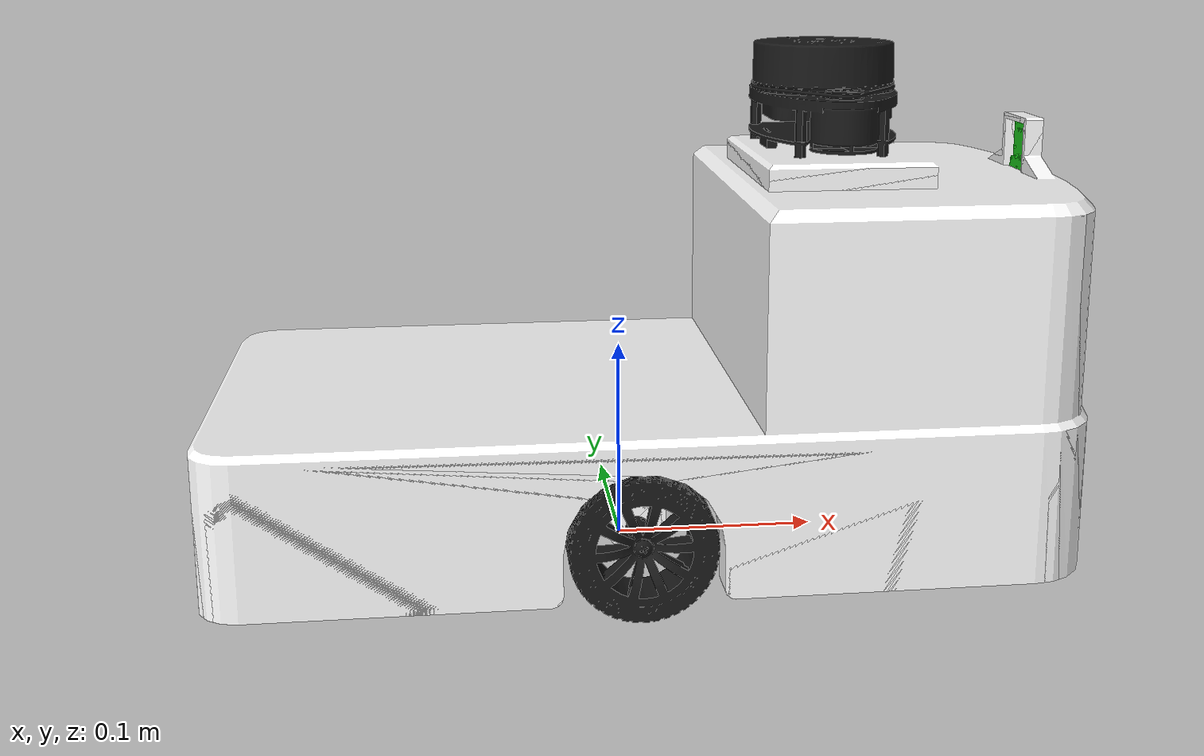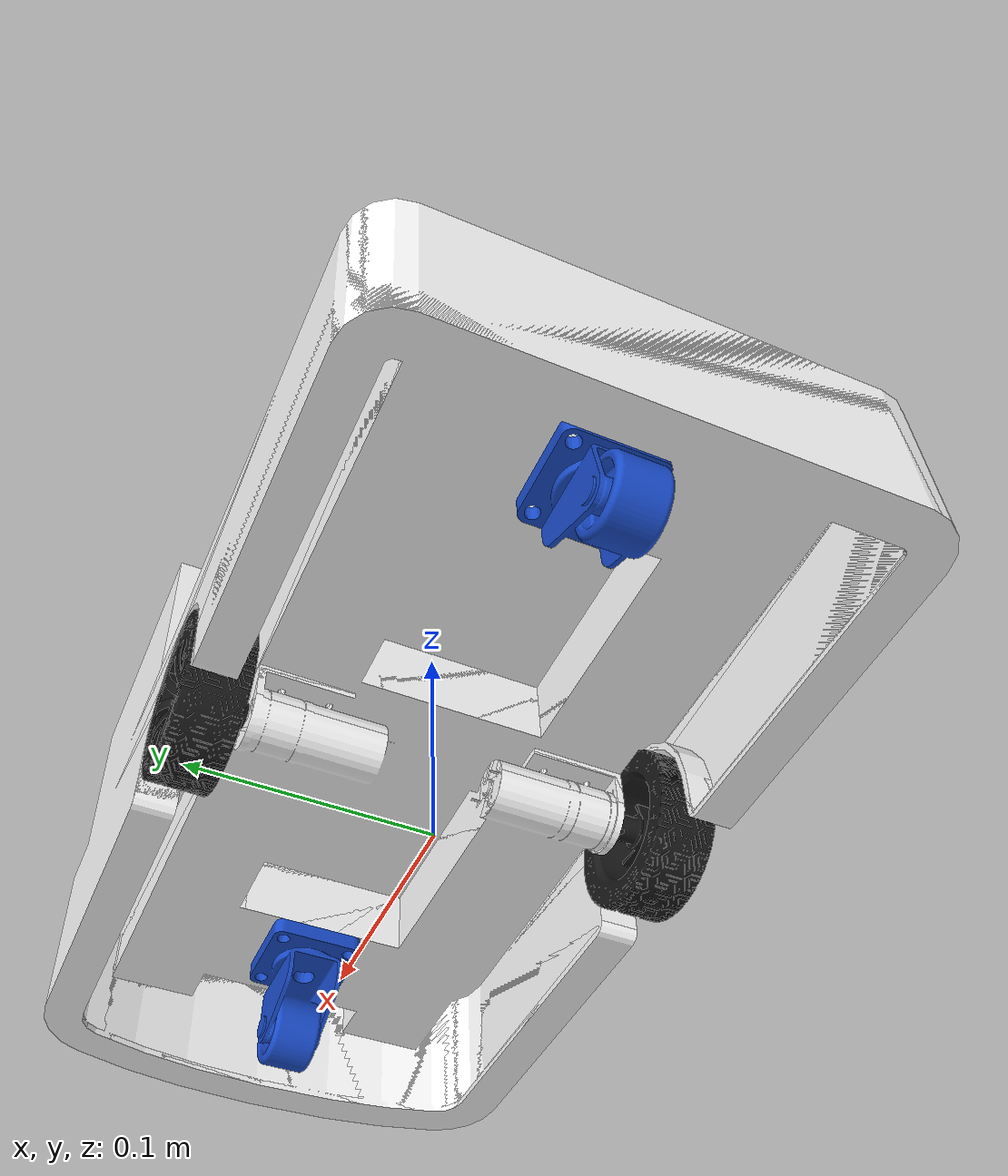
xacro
<?xml version="1.0"?>
<robot xmlns:xacro="http://www.ros.org/wiki/xacro">

  <link
    name="base_foot_link">
    <inertial>
      <origin
        xyz="0.028709 -1.1762E-06 0.081128"
        rpy="0 0 0" />
      <mass
        value="2.8319" />
      <inertia
        ixx="0.016695"
        ixy="2.9518E-07"
        ixz="-0.0048838"
        iyy="0.050394"
        iyz="3.5697E-07"
        izz="0.057487" />
    </inertial>
    <visual>
      <origin
        xyz="0 0 0"
        rpy="0 0 0" />
      <geometry>
        <mesh
          filename="package://simulation_pkg/models/base_foot_link.STL" />
      </geometry>
      <material
        name="White">
        <color
          rgba="1 1 1 1" />
      </material>
    </visual>
    <collision>
      <origin
        xyz="0 0 0"
        rpy="0 0 0" />
      <geometry>
        <mesh
          filename="package://simulation_pkg/models/base_foot_link.STL" />
      </geometry>
    </collision>
  </link>

  <link
    name="base_link">
    <inertial>
      <origin
        xyz="0.028709 -1.1762E-06 0.047328"
        rpy="0 0 0" />
      <mass
        value="2.8319" />
      <inertia
        ixx="0.016695"
        ixy="2.9518E-07"
        ixz="-0.0048838"
        iyy="0.050394"
        iyz="3.5697E-07"
        izz="0.057487" />
    </inertial>
    <visual>
      <origin
        xyz="0 0 0"
        rpy="0 0 0" />
      <geometry>
        <mesh
          filename="package://simulation_pkg/models/base_link.STL" />
      </geometry>
      <material
        name="White">
        <color
          rgba="1 1 1 1" />
      </material>
    </visual>
    <collision>
      <origin
        xyz="0 0 0"
        rpy="0 0 0" />
      <geometry>
        <mesh
          filename="package://simulation_pkg/models/base_link.STL" />
      </geometry>
    </collision>
  </link>

  <joint
    name="base_link_joint"
    type="fixed">
    <origin
      xyz="0 0 0.0338"
      rpy="0 0 0" />
    <parent
      link="base_foot_link" />
    <child
      link="base_link" />
    <axis
      xyz="0 0 0" />
  </joint>

   <gazebo reference="base_link">
        <material>Gazebo/White</material>
    </gazebo>

  <link
    name="right_wheel_link">
    <inertial>
      <origin
        xyz="-6.0851E-08 -2.6479E-08 -0.0056934"
        rpy="0 0 0" />
      <mass
        value="0.033874" />
      <inertia
        ixx="1.2633E-05"
        ixy="2.297E-11"
        ixz="5.9989E-12"
        iyy="1.2633E-05"
        iyz="2.1353E-12"
        izz="2.3297E-05" />
    </inertial>
    <visual>
      <origin
        xyz="0 0 0"
        rpy="0 0 0" />
      <geometry>
        <mesh
          filename="package://simulation_pkg/models/right_wheel_link.STL" />
      </geometry>
      <material
        name="Black">
        <color
          rgba="0.1 0.1 0.1 1" />
      </material>
    </visual>
    <collision>
      <origin
        xyz="0 0 0"
        rpy="0 0 0" />
      <geometry>
        <cylinder radius="0.034" length="0.026" />
      </geometry>
    </collision>
  </link>

  <joint
    name="right_wheel_joint"
    type="continuous">
    <origin
      xyz="0 -0.10385 0"
      rpy="1.5708 0 0" />
    <parent
      link="base_link" />
    <child
      link="right_wheel_link" />
    <axis
      xyz="0 0 1" />
    <limit
      effort="100"
      velocity="10" />
    <dynamics
      damping="0.1"
      friction="0.1" />
  </joint>

  <gazebo reference="right_wheel_link">
    <material>Gazebo/Black</material>
    <mu1>2.0</mu1>
    <mu2>2.0</mu2>
    <kp>1e6</kp>
    <kd>1.0</kd>
  </gazebo>

  <link
    name="left_wheel_link">
    <inertial>
      <origin
        xyz="1.2777E-08 6.5121E-08 0.0056934"
        rpy="0 0 0" />
      <mass
        value="0.033874" />
      <inertia
        ixx="1.2633E-05"
        ixy="-3.7029E-11"
        ixz="7.9558E-13"
        iyy="1.2633E-05"
        iyz="6.3177E-12"
        izz="2.3297E-05" />
    </inertial>
    <visual>
      <origin
        xyz="0 0 0"
        rpy="0 0 0" />
      <geometry>
        <mesh
          filename="package://simulation_pkg/models/left_wheel_link.STL" />
      </geometry>
      <material
        name="Black">
        <color
          rgba="0.1 0.1 0.1 1" />
      </material>
    </visual>
    <collision>
      <origin
        xyz="0 0 0"
        rpy="0 0 0" />
      <geometry>
        <cylinder radius="0.034" length="0.026" />
      </geometry>
    </collision>
  </link>

  <joint
    name="left_wheel_joint"
    type="continuous">
    <origin
      xyz="0 0.10385 0"
      rpy="1.5708 0 0" />
    <parent
      link="base_link" />
    <child
      link="left_wheel_link" />
    <axis
      xyz="0 0 1" />
    <limit
      effort="100"
      velocity="10" />
    <dynamics
      damping="0.1"
      friction="0.1" />
  </joint>

  <gazebo reference="left_wheel_link">
    <material>Gazebo/Black</material>
    <mu1>2.0</mu1>
    <mu2>2.0</mu2>
    <kp>1e6</kp>
    <kd>1.0</kd>
  </gazebo>

  <link
    name="front_caster_link">
    <inertial>
      <origin
        xyz="-0.0089009 -1.9819E-08 0.031166"
        rpy="0 0 0" />
      <mass
        value="0.032606" />
      <inertia
        ixx="4.0455E-06"
        ixy="-1.2329E-12"
        ixz="1.0515E-07"
        iyy="4.5906E-06"
        iyz="5.9156E-12"
        izz="5.9799E-06" />
    </inertial>
    <visual>
      <origin
        xyz="0 0 0"
        rpy="0 0 0" />
      <geometry>
        <mesh
          filename="package://simulation_pkg/models/front_caster_link.STL" />
      </geometry>
      <material
        name="Blue">
        <color
          rgba="0.1 0.3 0.8 1" />
      </material>
    </visual>
    <collision>
      <origin
        xyz="0 0 0"
        rpy="0 0 0" />
      <geometry>
        <mesh
          filename="package://simulation_pkg/models/front_caster_link.STL" />
      </geometry>
    </collision>
  </link>

  <joint
    name="front_caster_joint"
    type="fixed">
    <origin
      xyz="0.16904 0 -0.033801"
      rpy="0 0 0" />
    <parent
      link="base_link" />
    <child
      link="front_caster_link" />
    <axis
      xyz="0 0 0" />
  </joint>

  <gazebo reference="front_caster_link">
    <material>Gazebo/Blue</material>
    <mu1>0.0</mu1>
    <mu2>0.0</mu2>
  </gazebo>

  <link
    name="rear_caster_link">
    <inertial>
      <origin
        xyz="0.0089009 1.9819E-08 0.031166"
        rpy="0 0 0" />
      <mass
        value="0.032606" />
      <inertia
        ixx="4.0455E-06"
        ixy="-1.2329E-12"
        ixz="-1.0515E-07"
        iyy="4.5906E-06"
        iyz="-5.9156E-12"
        izz="5.9799E-06" />
    </inertial>
    <visual>
      <origin
        xyz="0 0 0"
        rpy="0 0 0" />
      <geometry>
        <mesh
          filename="package://simulation_pkg/models/rear_caster_link.STL" />
      </geometry>
      <material
        name="Blue">
        <color
          rgba="0.1 0.3 0.8 1" />
      </material>
    </visual>
    <collision>
      <origin
        xyz="0 0 0"
        rpy="0 0 0" />
      <geometry>
        <mesh
          filename="package://simulation_pkg/models/rear_caster_link.STL" />
      </geometry>
    </collision>
  </link>

  <joint
    name="rear_caster_joint"
    type="fixed">
    <origin
      xyz="-0.15694 0 -0.033801"
      rpy="0 0 0" />
    <parent
      link="base_link" />
    <child
      link="rear_caster_link" />
    <axis
      xyz="0 0 0" />
  </joint>

  <gazebo reference="rear_caster_link">
    <material>Gazebo/Blue</material>
    <mu1>0.0</mu1>
    <mu2>0.0</mu2>
  </gazebo>

  <link
    name="lidar_link">
    <inertial>
      <origin
        xyz="-0.0004791 -0.012128 -0.028959"
        rpy="0 0 0" />
      <mass
        value="0.073606" />
      <inertia
        ixx="2.414E-05"
        ixy="1.0407E-07"
        ixz="9.3871E-09"
        iyy="1.9594E-05"
        iyz="4.2835E-07"
        izz="4.1421E-05" />
    </inertial>
    <visual>
      <origin
        xyz="0 0 0"
        rpy="0 0 0" />
      <geometry>
        <mesh
          filename="package://simulation_pkg/models/lidar_link.STL" />
      </geometry>
      <material
        name="Black">
        <color
          rgba="0.1 0.1 0.1 1" />
      </material>
    </visual>
    <collision>
      <origin
        xyz="0 0 0"
        rpy="0 0 0" />
      <geometry>
        <mesh
          filename="package://simulation_pkg/models/lidar_link.STL" />
      </geometry>
    </collision>
  </link>

  <joint
    name="lidar_joint"
    type="fixed">
    <origin
      xyz="0.10399 0.012103 0.215"
      rpy="0 0 0" />
    <parent
      link="base_link" />
    <child
      link="lidar_link" />
    <axis
      xyz="0 0 0" />
  </joint>

  <gazebo reference="lidar_link">
        <material>Gazebo/Black</material>
    </gazebo>

  <link
    name="camera_link">
    <inertial>
      <origin
        xyz="-6.3245E-05 -0.00013858 -0.001753"
        rpy="0 0 0" />
      <mass
        value="0.0012611" />
      <inertia
        ixx="7.3712E-08"
        ixy="-3.4395E-12"
        ixz="-1.7868E-11"
        iyy="3.4448E-08"
        iyz="4.4653E-10"
        izz="4.0006E-08" />
    </inertial>
    <visual>
      <origin
        xyz="0 0 0"
        rpy="0 0 0" />
      <geometry>
        <mesh
          filename="package://simulation_pkg/models/camera_link.STL" />
      </geometry>
      <material
        name="Green">
        <color
          rgba="0.1 0.8 0.1 1" />
      </material>
    </visual>
    <collision>
      <origin
        xyz="0 0 0"
        rpy="0 0 0" />
      <geometry>
        <mesh
          filename="package://simulation_pkg/models/camera_link.STL" />
      </geometry>
    </collision>
  </link>

  <joint
    name="camera_joint"
    type="fixed">
    <origin
      xyz="0.20604 0 0.16311"
      rpy="0 0 0" />
    <parent
      link="base_link" />
    <child
      link="camera_link" />
    <axis
      xyz="0 0 0" />
  </joint>

  <joint
    name="camera_optical_joint"
    type="fixed">
    <origin
      xyz="0 0 0"
      rpy="-1.5708 0 -1.5708" />
    <parent
      link="camera_link" />
    <child
      link="camera_link_optical" />
    <axis
      xyz="0 0 0" />
  </joint>

  <link name="camera_link_optical"></link>

  <gazebo reference="camera_link">
        <material>Gazebo/Green</material>
    </gazebo>

</robot>
